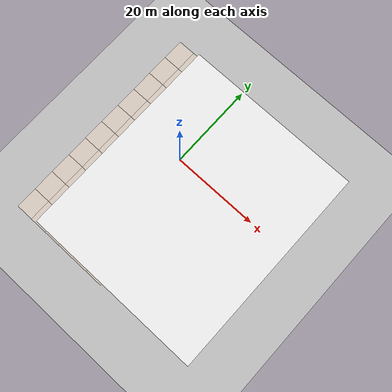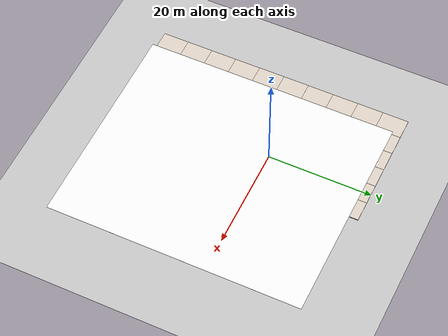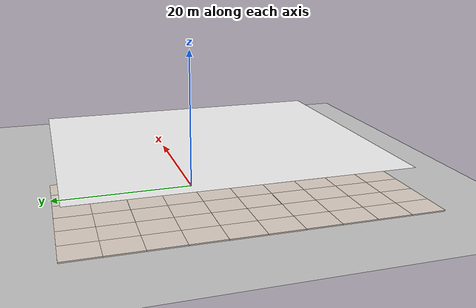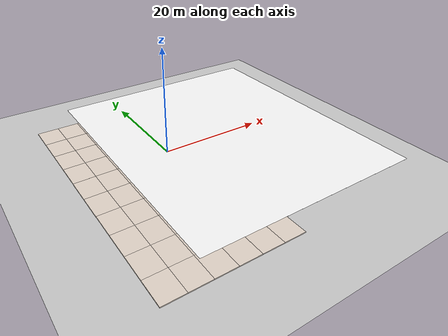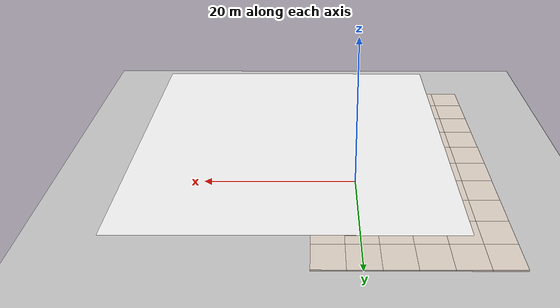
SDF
<sdf version="1.10">
 <world name="agri_world">
  <model name="ground_plane">
   <static>true</static>
   <link name="link">
    <collision name="collision">
     <geometry><plane><normal>0 0 1</normal><size>100 100</size></plane></geometry>
     <surface><friction><ode><mu>100</mu><mu2>50</mu2></ode></friction></surface>
    </collision>
    <visual name="visual">
     <cast_shadows>false</cast_shadows>
     <geometry><plane><normal>0 0 1</normal><size>100 100</size></plane></geometry>
     <material>
      <script><uri>file://media/materials/scripts/gazebo.material</uri><name>Gazebo/Grey</name></script>
     </material>
    </visual>
    <inertial>
     <mass>1</mass>
     <inertia><ixx>1</ixx><ixy>0</ixy><ixz>0</ixz><iyy>1</iyy><iyz>0</iyz><izz>1</izz></inertia>
    </inertial>
   </link>
  </model>
  <model name="mud_box">
   <static>true</static>
   <link name="link">
    <collision name="collision"><geometry><box><size>8 10 0.20000000000000001</size></box></geometry></collision>
    <visual name="visual_1">
     <pose>-2 2.5 0 0 0 0</pose>
     <cast_shadows>false</cast_shadows>
     <geometry><box><size>4 5 0.20000000000000001</size></box></geometry>
     <material>
      <ambient>0.899999976 0.850000024 0.800000012 1</ambient>
      <diffuse>0.899999976 0.850000024 0.800000012 1</diffuse>
      <specular>0.100000001 0.100000001 0.100000001 1</specular>
      <emissive>0 0 0 1</emissive>
      <pbr><metal><albedo_map>file://mud_box/materials/textures/mud_soft_leaves.png</albedo_map></metal></pbr>
     </material>
    </visual>
    <visual name="visual_2">
     <pose>2 2.5 0 0 0 0</pose>
     <cast_shadows>false</cast_shadows>
     <geometry><box><size>4 5 0.20000000000000001</size></box></geometry>
     <material>
      <ambient>0.899999976 0.850000024 0.800000012 1</ambient>
      <diffuse>0.899999976 0.850000024 0.800000012 1</diffuse>
      <specular>0.100000001 0.100000001 0.100000001 1</specular>
      <emissive>0 0 0 1</emissive>
      <pbr><metal><albedo_map>file://mud_box/materials/textures/mud_soft_leaves.png</albedo_map></metal></pbr>
     </material>
    </visual>
    <visual name="visual_3">
     <pose>2 -2.5 0 0 0 0</pose>
     <cast_shadows>false</cast_shadows>
     <geometry><box><size>4 5 0.20000000000000001</size></box></geometry>
     <material>
      <ambient>0.899999976 0.850000024 0.800000012 1</ambient>
      <diffuse>0.899999976 0.850000024 0.800000012 1</diffuse>
      <specular>0.100000001 0.100000001 0.100000001 1</specular>
      <emissive>0 0 0 1</emissive>
      <pbr><metal><albedo_map>file://mud_box/materials/textures/mud_soft_leaves.png</albedo_map></metal></pbr>
     </material>
    </visual>
    <visual name="visual_4">
     <pose>-2 -2.5 0 0 0 0</pose>
     <cast_shadows>false</cast_shadows>
     <geometry><box><size>4 5 0.20000000000000001</size></box></geometry>
     <material>
      <ambient>0.899999976 0.850000024 0.800000012 1</ambient>
      <diffuse>0.899999976 0.850000024 0.800000012 1</diffuse>
      <specular>0.100000001 0.100000001 0.100000001 1</specular>
      <emissive>0 0 0 1</emissive>
      <pbr><metal><albedo_map>file://mud_box/materials/textures/mud_soft_leaves.png</albedo_map></metal></pbr>
     </material>
    </visual>
    <inertial>
     <mass>1</mass>
     <inertia><ixx>1</ixx><ixy>0</ixy><ixz>0</ixz><iyy>1</iyy><iyz>0</iyz><izz>1</izz></inertia>
    </inertial>
   </link>
   <pose>-6.12765 4.83622 0 0 0 0</pose>
  </model>
  <model name="mud_box_0">
   <static>true</static>
   <link name="link">
    <collision name="collision"><geometry><box><size>8 10 0.20000000000000001</size></box></geometry></collision>
    <visual name="visual_1">
     <pose>-2 2.5 0 0 0 0</pose>
     <cast_shadows>false</cast_shadows>
     <geometry><box><size>4 5 0.20000000000000001</size></box></geometry>
     <material>
      <ambient>0.899999976 0.850000024 0.800000012 1</ambient>
      <diffuse>0.899999976 0.850000024 0.800000012 1</diffuse>
      <specular>0.100000001 0.100000001 0.100000001 1</specular>
      <emissive>0 0 0 1</emissive>
      <pbr><metal><albedo_map>file://mud_box/materials/textures/mud_soft_leaves.png</albedo_map></metal></pbr>
     </material>
    </visual>
    <visual name="visual_2">
     <pose>2 2.5 0 0 0 0</pose>
     <cast_shadows>false</cast_shadows>
     <geometry><box><size>4 5 0.20000000000000001</size></box></geometry>
     <material>
      <ambient>0.899999976 0.850000024 0.800000012 1</ambient>
      <diffuse>0.899999976 0.850000024 0.800000012 1</diffuse>
      <specular>0.100000001 0.100000001 0.100000001 1</specular>
      <emissive>0 0 0 1</emissive>
      <pbr><metal><albedo_map>file://mud_box/materials/textures/mud_soft_leaves.png</albedo_map></metal></pbr>
     </material>
    </visual>
    <visual name="visual_3">
     <pose>2 -2.5 0 0 0 0</pose>
     <cast_shadows>false</cast_shadows>
     <geometry><box><size>4 5 0.20000000000000001</size></box></geometry>
     <material>
      <ambient>0.899999976 0.850000024 0.800000012 1</ambient>
      <diffuse>0.899999976 0.850000024 0.800000012 1</diffuse>
      <specular>0.100000001 0.100000001 0.100000001 1</specular>
      <emissive>0 0 0 1</emissive>
      <pbr><metal><albedo_map>file://mud_box/materials/textures/mud_soft_leaves.png</albedo_map></metal></pbr>
     </material>
    </visual>
    <visual name="visual_4">
     <pose>-2 -2.5 0 0 0 0</pose>
     <cast_shadows>false</cast_shadows>
     <geometry><box><size>4 5 0.20000000000000001</size></box></geometry>
     <material>
      <ambient>0.899999976 0.850000024 0.800000012 1</ambient>
      <diffuse>0.899999976 0.850000024 0.800000012 1</diffuse>
      <specular>0.100000001 0.100000001 0.100000001 1</specular>
      <emissive>0 0 0 1</emissive>
      <pbr><metal><albedo_map>file://mud_box/materials/textures/mud_soft_leaves.png</albedo_map></metal></pbr>
     </material>
    </visual>
    <inertial>
     <mass>1</mass>
     <inertia><ixx>1</ixx><ixy>0</ixy><ixz>0</ixz><iyy>1</iyy><iyz>0</iyz><izz>1</izz></inertia>
    </inertial>
   </link>
   <pose>1.8676699999999999 4.8310399999999998 0 0 0 0</pose>
  </model>
  <model name="mud_box_1">
   <static>true</static>
   <link name="link">
    <collision name="collision"><geometry><box><size>8 10 0.20000000000000001</size></box></geometry></collision>
    <visual name="visual_1">
     <pose>-2 2.5 0 0 0 0</pose>
     <cast_shadows>false</cast_shadows>
     <geometry><box><size>4 5 0.20000000000000001</size></box></geometry>
     <material>
      <ambient>0.899999976 0.850000024 0.800000012 1</ambient>
      <diffuse>0.899999976 0.850000024 0.800000012 1</diffuse>
      <specular>0.100000001 0.100000001 0.100000001 1</specular>
      <emissive>0 0 0 1</emissive>
      <pbr><metal><albedo_map>file://mud_box/materials/textures/mud_soft_leaves.png</albedo_map></metal></pbr>
     </material>
    </visual>
    <visual name="visual_2">
     <pose>2 2.5 0 0 0 0</pose>
     <cast_shadows>false</cast_shadows>
     <geometry><box><size>4 5 0.20000000000000001</size></box></geometry>
     <material>
      <ambient>0.899999976 0.850000024 0.800000012 1</ambient>
      <diffuse>0.899999976 0.850000024 0.800000012 1</diffuse>
      <specular>0.100000001 0.100000001 0.100000001 1</specular>
      <emissive>0 0 0 1</emissive>
      <pbr><metal><albedo_map>file://mud_box/materials/textures/mud_soft_leaves.png</albedo_map></metal></pbr>
     </material>
    </visual>
    <visual name="visual_3">
     <pose>2 -2.5 0 0 0 0</pose>
     <cast_shadows>false</cast_shadows>
     <geometry><box><size>4 5 0.20000000000000001</size></box></geometry>
     <material>
      <ambient>0.899999976 0.850000024 0.800000012 1</ambient>
      <diffuse>0.899999976 0.850000024 0.800000012 1</diffuse>
      <specular>0.100000001 0.100000001 0.100000001 1</specular>
      <emissive>0 0 0 1</emissive>
      <pbr><metal><albedo_map>file://mud_box/materials/textures/mud_soft_leaves.png</albedo_map></metal></pbr>
     </material>
    </visual>
    <visual name="visual_4">
     <pose>-2 -2.5 0 0 0 0</pose>
     <cast_shadows>false</cast_shadows>
     <geometry><box><size>4 5 0.20000000000000001</size></box></geometry>
     <material>
      <ambient>0.899999976 0.850000024 0.800000012 1</ambient>
      <diffuse>0.899999976 0.850000024 0.800000012 1</diffuse>
      <specular>0.100000001 0.100000001 0.100000001 1</specular>
      <emissive>0 0 0 1</emissive>
      <pbr><metal><albedo_map>file://mud_box/materials/textures/mud_soft_leaves.png</albedo_map></metal></pbr>
     </material>
    </visual>
    <inertial>
     <mass>1</mass>
     <inertia><ixx>1</ixx><ixy>0</ixy><ixz>0</ixz><iyy>1</iyy><iyz>0</iyz><izz>1</izz></inertia>
    </inertial>
   </link>
   <pose>-6.1279199999999996 -5.1399800000000004 0 0 0 0</pose>
  </model>
  <model name="mud_box_2">
   <static>true</static>
   <link name="link">
    <collision name="collision"><geometry><box><size>8 10 0.20000000000000001</size></box></geometry></collision>
    <visual name="visual_1">
     <pose>-2 2.5 0 0 0 0</pose>
     <cast_shadows>false</cast_shadows>
     <geometry><box><size>4 5 0.20000000000000001</size></box></geometry>
     <material>
      <ambient>0.899999976 0.850000024 0.800000012 1</ambient>
      <diffuse>0.899999976 0.850000024 0.800000012 1</diffuse>
      <specular>0.100000001 0.100000001 0.100000001 1</specular>
      <emissive>0 0 0 1</emissive>
      <pbr><metal><albedo_map>file://mud_box/materials/textures/mud_soft_leaves.png</albedo_map></metal></pbr>
     </material>
    </visual>
    <visual name="visual_2">
     <pose>2 2.5 0 0 0 0</pose>
     <cast_shadows>false</cast_shadows>
     <geometry><box><size>4 5 0.20000000000000001</size></box></geometry>
     <material>
      <ambient>0.899999976 0.850000024 0.800000012 1</ambient>
      <diffuse>0.899999976 0.850000024 0.800000012 1</diffuse>
      <specular>0.100000001 0.100000001 0.100000001 1</specular>
      <emissive>0 0 0 1</emissive>
      <pbr><metal><albedo_map>file://mud_box/materials/textures/mud_soft_leaves.png</albedo_map></metal></pbr>
     </material>
    </visual>
    <visual name="visual_3">
     <pose>2 -2.5 0 0 0 0</pose>
     <cast_shadows>false</cast_shadows>
     <geometry><box><size>4 5 0.20000000000000001</size></box></geometry>
     <material>
      <ambient>0.899999976 0.850000024 0.800000012 1</ambient>
      <diffuse>0.899999976 0.850000024 0.800000012 1</diffuse>
      <specular>0.100000001 0.100000001 0.100000001 1</specular>
      <emissive>0 0 0 1</emissive>
      <pbr><metal><albedo_map>file://mud_box/materials/textures/mud_soft_leaves.png</albedo_map></metal></pbr>
     </material>
    </visual>
    <visual name="visual_4">
     <pose>-2 -2.5 0 0 0 0</pose>
     <cast_shadows>false</cast_shadows>
     <geometry><box><size>4 5 0.20000000000000001</size></box></geometry>
     <material>
      <ambient>0.899999976 0.850000024 0.800000012 1</ambient>
      <diffuse>0.899999976 0.850000024 0.800000012 1</diffuse>
      <specular>0.100000001 0.100000001 0.100000001 1</specular>
      <emissive>0 0 0 1</emissive>
      <pbr><metal><albedo_map>file://mud_box/materials/textures/mud_soft_leaves.png</albedo_map></metal></pbr>
     </material>
    </visual>
    <inertial>
     <mass>1</mass>
     <inertia><ixx>1</ixx><ixy>0</ixy><ixz>0</ixz><iyy>1</iyy><iyz>0</iyz><izz>1</izz></inertia>
    </inertial>
   </link>
   <pose>1.85975 -5.1519199999999998 0 0 0 0</pose>
  </model>
  <model name="mud_box_0_clone_clone_1">
   <static>true</static>
   <link name="link">
    <collision name="collision"><geometry><box><size>8 10 0.20000000000000001</size></box></geometry></collision>
    <visual name="visual_1">
     <pose>-2 2.5 0 0 0 0</pose>
     <cast_shadows>false</cast_shadows>
     <geometry><box><size>4 5 0.20000000000000001</size></box></geometry>
     <material>
      <ambient>0.899999976 0.850000024 0.800000012 1</ambient>
      <diffuse>0.899999976 0.850000024 0.800000012 1</diffuse>
      <specular>0.100000001 0.100000001 0.100000001 1</specular>
      <emissive>0 0 0 1</emissive>
      <pbr><metal><albedo_map>file://mud_box/materials/textures/mud_soft_leaves.png</albedo_map></metal></pbr>
     </material>
    </visual>
    <visual name="visual_2">
     <pose>2 2.5 0 0 0 0</pose>
     <cast_shadows>false</cast_shadows>
     <geometry><box><size>4 5 0.20000000000000001</size></box></geometry>
     <material>
      <ambient>0.899999976 0.850000024 0.800000012 1</ambient>
      <diffuse>0.899999976 0.850000024 0.800000012 1</diffuse>
      <specular>0.100000001 0.100000001 0.100000001 1</specular>
      <emissive>0 0 0 1</emissive>
      <pbr><metal><albedo_map>file://mud_box/materials/textures/mud_soft_leaves.png</albedo_map></metal></pbr>
     </material>
    </visual>
    <visual name="visual_3">
     <pose>2 -2.5 0 0 0 0</pose>
     <cast_shadows>false</cast_shadows>
     <geometry><box><size>4 5 0.20000000000000001</size></box></geometry>
     <material>
      <ambient>0.899999976 0.850000024 0.800000012 1</ambient>
      <diffuse>0.899999976 0.850000024 0.800000012 1</diffuse>
      <specular>0.100000001 0.100000001 0.100000001 1</specular>
      <emissive>0 0 0 1</emissive>
      <pbr><metal><albedo_map>file://mud_box/materials/textures/mud_soft_leaves.png</albedo_map></metal></pbr>
     </material>
    </visual>
    <visual name="visual_4">
     <pose>-2 -2.5 0 0 0 0</pose>
     <cast_shadows>false</cast_shadows>
     <geometry><box><size>4 5 0.20000000000000001</size></box></geometry>
     <material>
      <ambient>0.899999976 0.850000024 0.800000012 1</ambient>
      <diffuse>0.899999976 0.850000024 0.800000012 1</diffuse>
      <specular>0.100000001 0.100000001 0.100000001 1</specular>
      <emissive>0 0 0 1</emissive>
      <pbr><metal><albedo_map>file://mud_box/materials/textures/mud_soft_leaves.png</albedo_map></metal></pbr>
     </material>
    </visual>
    <inertial>
     <mass>1</mass>
     <inertia><ixx>1</ixx><ixy>0</ixy><ixz>0</ixz><iyy>1</iyy><iyz>0</iyz><izz>1</izz></inertia>
    </inertial>
   </link>
   <pose>-14.127599999999999 -5.1520900000000003 0 0 0 0</pose>
  </model>
  <model name="mud_box_4">
   <static>true</static>
   <link name="link">
    <collision name="collision"><geometry><box><size>8 10 0.20000000000000001</size></box></geometry></collision>
    <visual name="visual_1">
     <pose>-2 2.5 0 0 0 0</pose>
     <cast_shadows>false</cast_shadows>
     <geometry><box><size>4 5 0.20000000000000001</size></box></geometry>
     <material>
      <ambient>0.899999976 0.850000024 0.800000012 1</ambient>
      <diffuse>0.899999976 0.850000024 0.800000012 1</diffuse>
      <specular>0.100000001 0.100000001 0.100000001 1</specular>
      <emissive>0 0 0 1</emissive>
      <pbr><metal><albedo_map>file://mud_box/materials/textures/mud_soft_leaves.png</albedo_map></metal></pbr>
     </material>
    </visual>
    <visual name="visual_2">
     <pose>2 2.5 0 0 0 0</pose>
     <cast_shadows>false</cast_shadows>
     <geometry><box><size>4 5 0.20000000000000001</size></box></geometry>
     <material>
      <ambient>0.899999976 0.850000024 0.800000012 1</ambient>
      <diffuse>0.899999976 0.850000024 0.800000012 1</diffuse>
      <specular>0.100000001 0.100000001 0.100000001 1</specular>
      <emissive>0 0 0 1</emissive>
      <pbr><metal><albedo_map>file://mud_box/materials/textures/mud_soft_leaves.png</albedo_map></metal></pbr>
     </material>
    </visual>
    <visual name="visual_3">
     <pose>2 -2.5 0 0 0 0</pose>
     <cast_shadows>false</cast_shadows>
     <geometry><box><size>4 5 0.20000000000000001</size></box></geometry>
     <material>
      <ambient>0.899999976 0.850000024 0.800000012 1</ambient>
      <diffuse>0.899999976 0.850000024 0.800000012 1</diffuse>
      <specular>0.100000001 0.100000001 0.100000001 1</specular>
      <emissive>0 0 0 1</emissive>
      <pbr><metal><albedo_map>file://mud_box/materials/textures/mud_soft_leaves.png</albedo_map></metal></pbr>
     </material>
    </visual>
    <visual name="visual_4">
     <pose>-2 -2.5 0 0 0 0</pose>
     <cast_shadows>false</cast_shadows>
     <geometry><box><size>4 5 0.20000000000000001</size></box></geometry>
     <material>
      <ambient>0.899999976 0.850000024 0.800000012 1</ambient>
      <diffuse>0.899999976 0.850000024 0.800000012 1</diffuse>
      <specular>0.100000001 0.100000001 0.100000001 1</specular>
      <emissive>0 0 0 1</emissive>
      <pbr><metal><albedo_map>file://mud_box/materials/textures/mud_soft_leaves.png</albedo_map></metal></pbr>
     </material>
    </visual>
    <inertial>
     <mass>1</mass>
     <inertia><ixx>1</ixx><ixy>0</ixy><ixz>0</ixz><iyy>1</iyy><iyz>0</iyz><izz>1</izz></inertia>
    </inertial>
   </link>
   <pose>-14.1 14.85 0 0 0 0</pose>
  </model>
  <model name="mud_box_5">
   <static>true</static>
   <link name="link">
    <collision name="collision"><geometry><box><size>8 10 0.20000000000000001</size></box></geometry></collision>
    <visual name="visual_1">
     <pose>-2 2.5 0 0 0 0</pose>
     <cast_shadows>false</cast_shadows>
     <geometry><box><size>4 5 0.20000000000000001</size></box></geometry>
     <material>
      <ambient>0.899999976 0.850000024 0.800000012 1</ambient>
      <diffuse>0.899999976 0.850000024 0.800000012 1</diffuse>
      <specular>0.100000001 0.100000001 0.100000001 1</specular>
      <emissive>0 0 0 1</emissive>
      <pbr><metal><albedo_map>file://mud_box/materials/textures/mud_soft_leaves.png</albedo_map></metal></pbr>
     </material>
    </visual>
    <visual name="visual_2">
     <pose>2 2.5 0 0 0 0</pose>
     <cast_shadows>false</cast_shadows>
     <geometry><box><size>4 5 0.20000000000000001</size></box></geometry>
     <material>
      <ambient>0.899999976 0.850000024 0.800000012 1</ambient>
      <diffuse>0.899999976 0.850000024 0.800000012 1</diffuse>
      <specular>0.100000001 0.100000001 0.100000001 1</specular>
      <emissive>0 0 0 1</emissive>
      <pbr><metal><albedo_map>file://mud_box/materials/textures/mud_soft_leaves.png</albedo_map></metal></pbr>
     </material>
    </visual>
    <visual name="visual_3">
     <pose>2 -2.5 0 0 0 0</pose>
     <cast_shadows>false</cast_shadows>
     <geometry><box><size>4 5 0.20000000000000001</size></box></geometry>
     <material>
      <ambient>0.899999976 0.850000024 0.800000012 1</ambient>
      <diffuse>0.899999976 0.850000024 0.800000012 1</diffuse>
      <specular>0.100000001 0.100000001 0.100000001 1</specular>
      <emissive>0 0 0 1</emissive>
      <pbr><metal><albedo_map>file://mud_box/materials/textures/mud_soft_leaves.png</albedo_map></metal></pbr>
     </material>
    </visual>
    <visual name="visual_4">
     <pose>-2 -2.5 0 0 0 0</pose>
     <cast_shadows>false</cast_shadows>
     <geometry><box><size>4 5 0.20000000000000001</size></box></geometry>
     <material>
      <ambient>0.899999976 0.850000024 0.800000012 1</ambient>
      <diffuse>0.899999976 0.850000024 0.800000012 1</diffuse>
      <specular>0.100000001 0.100000001 0.100000001 1</specular>
      <emissive>0 0 0 1</emissive>
      <pbr><metal><albedo_map>file://mud_box/materials/textures/mud_soft_leaves.png</albedo_map></metal></pbr>
     </material>
    </visual>
    <inertial>
     <mass>1</mass>
     <inertia><ixx>1</ixx><ixy>0</ixy><ixz>0</ixz><iyy>1</iyy><iyz>0</iyz><izz>1</izz></inertia>
    </inertial>
   </link>
   <pose>-6.0999999999999996 14.85 0 0 0 0</pose>
  </model>
  <model name="mud_box_8">
   <static>true</static>
   <link name="link">
    <collision name="collision"><geometry><box><size>8 10 0.20000000000000001</size></box></geometry></collision>
    <visual name="visual_1">
     <pose>-2 2.5 0 0 0 0</pose>
     <cast_shadows>false</cast_shadows>
     <geometry><box><size>4 5 0.20000000000000001</size></box></geometry>
     <material>
      <ambient>0.899999976 0.850000024 0.800000012 1</ambient>
      <diffuse>0.899999976 0.850000024 0.800000012 1</diffuse>
      <specular>0.100000001 0.100000001 0.100000001 1</specular>
      <emissive>0 0 0 1</emissive>
      <pbr><metal><albedo_map>file://mud_box/materials/textures/mud_soft_leaves.png</albedo_map></metal></pbr>
     </material>
    </visual>
    <visual name="visual_2">
     <pose>2 2.5 0 0 0 0</pose>
     <cast_shadows>false</cast_shadows>
     <geometry><box><size>4 5 0.20000000000000001</size></box></geometry>
     <material>
      <ambient>0.899999976 0.850000024 0.800000012 1</ambient>
      <diffuse>0.899999976 0.850000024 0.800000012 1</diffuse>
      <specular>0.100000001 0.100000001 0.100000001 1</specular>
      <emissive>0 0 0 1</emissive>
      <pbr><metal><albedo_map>file://mud_box/materials/textures/mud_soft_leaves.png</albedo_map></metal></pbr>
     </material>
    </visual>
    <visual name="visual_3">
     <pose>2 -2.5 0 0 0 0</pose>
     <cast_shadows>false</cast_shadows>
     <geometry><box><size>4 5 0.20000000000000001</size></box></geometry>
     <material>
      <ambient>0.899999976 0.850000024 0.800000012 1</ambient>
      <diffuse>0.899999976 0.850000024 0.800000012 1</diffuse>
      <specular>0.100000001 0.100000001 0.100000001 1</specular>
      <emissive>0 0 0 1</emissive>
      <pbr><metal><albedo_map>file://mud_box/materials/textures/mud_soft_leaves.png</albedo_map></metal></pbr>
     </material>
    </visual>
    <visual name="visual_4">
     <pose>-2 -2.5 0 0 0 0</pose>
     <cast_shadows>false</cast_shadows>
     <geometry><box><size>4 5 0.20000000000000001</size></box></geometry>
     <material>
      <ambient>0.899999976 0.850000024 0.800000012 1</ambient>
      <diffuse>0.899999976 0.850000024 0.800000012 1</diffuse>
      <specular>0.100000001 0.100000001 0.100000001 1</specular>
      <emissive>0 0 0 1</emissive>
      <pbr><metal><albedo_map>file://mud_box/materials/textures/mud_soft_leaves.png</albedo_map></metal></pbr>
     </material>
    </visual>
    <inertial>
     <mass>1</mass>
     <inertia><ixx>1</ixx><ixy>0</ixy><ixz>0</ixz><iyy>1</iyy><iyz>0</iyz><izz>1</izz></inertia>
    </inertial>
   </link>
   <pose>1.8999999999999999 14.85 0 0 0 0</pose>
  </model>
  <model name="mud_box_0_clone_clone_1_1">
   <static>true</static>
   <link name="link">
    <collision name="collision"><geometry><box><size>8 10 0.20000000000000001</size></box></geometry></collision>
    <visual name="visual_1">
     <pose>-2 2.5 0 0 0 0</pose>
     <cast_shadows>false</cast_shadows>
     <geometry><box><size>4 5 0.20000000000000001</size></box></geometry>
     <material>
      <ambient>0.899999976 0.850000024 0.800000012 1</ambient>
      <diffuse>0.899999976 0.850000024 0.800000012 1</diffuse>
      <specular>0.100000001 0.100000001 0.100000001 1</specular>
      <emissive>0 0 0 1</emissive>
      <pbr><metal><albedo_map>file://mud_box/materials/textures/mud_soft_leaves.png</albedo_map></metal></pbr>
     </material>
    </visual>
    <visual name="visual_2">
     <pose>2 2.5 0 0 0 0</pose>
     <cast_shadows>false</cast_shadows>
     <geometry><box><size>4 5 0.20000000000000001</size></box></geometry>
     <material>
      <ambient>0.899999976 0.850000024 0.800000012 1</ambient>
      <diffuse>0.899999976 0.850000024 0.800000012 1</diffuse>
      <specular>0.100000001 0.100000001 0.100000001 1</specular>
      <emissive>0 0 0 1</emissive>
      <pbr><metal><albedo_map>file://mud_box/materials/textures/mud_soft_leaves.png</albedo_map></metal></pbr>
     </material>
    </visual>
    <visual name="visual_3">
     <pose>2 -2.5 0 0 0 0</pose>
     <cast_shadows>false</cast_shadows>
     <geometry><box><size>4 5 0.20000000000000001</size></box></geometry>
     <material>
      <ambient>0.899999976 0.850000024 0.800000012 1</ambient>
      <diffuse>0.899999976 0.850000024 0.800000012 1</diffuse>
      <specular>0.100000001 0.100000001 0.100000001 1</specular>
      <emissive>0 0 0 1</emissive>
      <pbr><metal><albedo_map>file://mud_box/materials/textures/mud_soft_leaves.png</albedo_map></metal></pbr>
     </material>
    </visual>
    <visual name="visual_4">
     <pose>-2 -2.5 0 0 0 0</pose>
     <cast_shadows>false</cast_shadows>
     <geometry><box><size>4 5 0.20000000000000001</size></box></geometry>
     <material>
      <ambient>0.899999976 0.850000024 0.800000012 1</ambient>
      <diffuse>0.899999976 0.850000024 0.800000012 1</diffuse>
      <specular>0.100000001 0.100000001 0.100000001 1</specular>
      <emissive>0 0 0 1</emissive>
      <pbr><metal><albedo_map>file://mud_box/materials/textures/mud_soft_leaves.png</albedo_map></metal></pbr>
     </material>
    </visual>
    <inertial>
     <mass>1</mass>
     <inertia><ixx>1</ixx><ixy>0</ixy><ixz>0</ixz><iyy>1</iyy><iyz>0</iyz><izz>1</izz></inertia>
    </inertial>
   </link>
   <pose>-14.1 -15.15 0 0 0 0</pose>
  </model>
  <model name="mud_box_0_clone_clone_1_2">
   <static>true</static>
   <link name="link">
    <collision name="collision"><geometry><box><size>8 10 0.20000000000000001</size></box></geometry></collision>
    <visual name="visual_1">
     <pose>-2 2.5 0 0 0 0</pose>
     <cast_shadows>false</cast_shadows>
     <geometry><box><size>4 5 0.20000000000000001</size></box></geometry>
     <material>
      <ambient>0.899999976 0.850000024 0.800000012 1</ambient>
      <diffuse>0.899999976 0.850000024 0.800000012 1</diffuse>
      <specular>0.100000001 0.100000001 0.100000001 1</specular>
      <emissive>0 0 0 1</emissive>
      <pbr><metal><albedo_map>file://mud_box/materials/textures/mud_soft_leaves.png</albedo_map></metal></pbr>
     </material>
    </visual>
    <visual name="visual_2">
     <pose>2 2.5 0 0 0 0</pose>
     <cast_shadows>false</cast_shadows>
     <geometry><box><size>4 5 0.20000000000000001</size></box></geometry>
     <material>
      <ambient>0.899999976 0.850000024 0.800000012 1</ambient>
      <diffuse>0.899999976 0.850000024 0.800000012 1</diffuse>
      <specular>0.100000001 0.100000001 0.100000001 1</specular>
      <emissive>0 0 0 1</emissive>
      <pbr><metal><albedo_map>file://mud_box/materials/textures/mud_soft_leaves.png</albedo_map></metal></pbr>
     </material>
    </visual>
    <visual name="visual_3">
     <pose>2 -2.5 0 0 0 0</pose>
     <cast_shadows>false</cast_shadows>
     <geometry><box><size>4 5 0.20000000000000001</size></box></geometry>
     <material>
      <ambient>0.899999976 0.850000024 0.800000012 1</ambient>
      <diffuse>0.899999976 0.850000024 0.800000012 1</diffuse>
      <specular>0.100000001 0.100000001 0.100000001 1</specular>
      <emissive>0 0 0 1</emissive>
      <pbr><metal><albedo_map>file://mud_box/materials/textures/mud_soft_leaves.png</albedo_map></metal></pbr>
     </material>
    </visual>
    <visual name="visual_4">
     <pose>-2 -2.5 0 0 0 0</pose>
     <cast_shadows>false</cast_shadows>
     <geometry><box><size>4 5 0.20000000000000001</size></box></geometry>
     <material>
      <ambient>0.899999976 0.850000024 0.800000012 1</ambient>
      <diffuse>0.899999976 0.850000024 0.800000012 1</diffuse>
      <specular>0.100000001 0.100000001 0.100000001 1</specular>
      <emissive>0 0 0 1</emissive>
      <pbr><metal><albedo_map>file://mud_box/materials/textures/mud_soft_leaves.png</albedo_map></metal></pbr>
     </material>
    </visual>
    <inertial>
     <mass>1</mass>
     <inertia><ixx>1</ixx><ixy>0</ixy><ixz>0</ixz><iyy>1</iyy><iyz>0</iyz><izz>1</izz></inertia>
    </inertial>
   </link>
   <pose>-6.0999999999999996 -15.15 0 0 0 0</pose>
  </model>
  <model name="mud_box_0_clone_clone_1_3">
   <static>true</static>
   <link name="link">
    <collision name="collision"><geometry><box><size>8 10 0.20000000000000001</size></box></geometry></collision>
    <visual name="visual_1">
     <pose>-2 2.5 0 0 0 0</pose>
     <cast_shadows>false</cast_shadows>
     <geometry><box><size>4 5 0.20000000000000001</size></box></geometry>
     <material>
      <ambient>0.899999976 0.850000024 0.800000012 1</ambient>
      <diffuse>0.899999976 0.850000024 0.800000012 1</diffuse>
      <specular>0.100000001 0.100000001 0.100000001 1</specular>
      <emissive>0 0 0 1</emissive>
      <pbr><metal><albedo_map>file://mud_box/materials/textures/mud_soft_leaves.png</albedo_map></metal></pbr>
     </material>
    </visual>
    <visual name="visual_2">
     <pose>2 2.5 0 0 0 0</pose>
     <cast_shadows>false</cast_shadows>
     <geometry><box><size>4 5 0.20000000000000001</size></box></geometry>
     <material>
      <ambient>0.899999976 0.850000024 0.800000012 1</ambient>
      <diffuse>0.899999976 0.850000024 0.800000012 1</diffuse>
      <specular>0.100000001 0.100000001 0.100000001 1</specular>
      <emissive>0 0 0 1</emissive>
      <pbr><metal><albedo_map>file://mud_box/materials/textures/mud_soft_leaves.png</albedo_map></metal></pbr>
     </material>
    </visual>
    <visual name="visual_3">
     <pose>2 -2.5 0 0 0 0</pose>
     <cast_shadows>false</cast_shadows>
     <geometry><box><size>4 5 0.20000000000000001</size></box></geometry>
     <material>
      <ambient>0.899999976 0.850000024 0.800000012 1</ambient>
      <diffuse>0.899999976 0.850000024 0.800000012 1</diffuse>
      <specular>0.100000001 0.100000001 0.100000001 1</specular>
      <emissive>0 0 0 1</emissive>
      <pbr><metal><albedo_map>file://mud_box/materials/textures/mud_soft_leaves.png</albedo_map></metal></pbr>
     </material>
    </visual>
    <visual name="visual_4">
     <pose>-2 -2.5 0 0 0 0</pose>
     <cast_shadows>false</cast_shadows>
     <geometry><box><size>4 5 0.20000000000000001</size></box></geometry>
     <material>
      <ambient>0.899999976 0.850000024 0.800000012 1</ambient>
      <diffuse>0.899999976 0.850000024 0.800000012 1</diffuse>
      <specular>0.100000001 0.100000001 0.100000001 1</specular>
      <emissive>0 0 0 1</emissive>
      <pbr><metal><albedo_map>file://mud_box/materials/textures/mud_soft_leaves.png</albedo_map></metal></pbr>
     </material>
    </visual>
    <inertial>
     <mass>1</mass>
     <inertia><ixx>1</ixx><ixy>0</ixy><ixz>0</ixz><iyy>1</iyy><iyz>0</iyz><izz>1</izz></inertia>
    </inertial>
   </link>
   <pose>1.8999999999999999 -15.15 0 0 0 0</pose>
  </model>
  <model name="mud_box_0_clone_clone_1_6">
   <static>true</static>
   <link name="link">
    <collision name="collision"><geometry><box><size>8 10 0.20000000000000001</size></box></geometry></collision>
    <visual name="visual_1">
     <pose>-2 2.5 0 0 0 0</pose>
     <cast_shadows>false</cast_shadows>
     <geometry><box><size>4 5 0.20000000000000001</size></box></geometry>
     <material>
      <ambient>0.899999976 0.850000024 0.800000012 1</ambient>
      <diffuse>0.899999976 0.850000024 0.800000012 1</diffuse>
      <specular>0.100000001 0.100000001 0.100000001 1</specular>
      <emissive>0 0 0 1</emissive>
      <pbr><metal><albedo_map>file://mud_box/materials/textures/mud_soft_leaves.png</albedo_map></metal></pbr>
     </material>
    </visual>
    <visual name="visual_2">
     <pose>2 2.5 0 0 0 0</pose>
     <cast_shadows>false</cast_shadows>
     <geometry><box><size>4 5 0.20000000000000001</size></box></geometry>
     <material>
      <ambient>0.899999976 0.850000024 0.800000012 1</ambient>
      <diffuse>0.899999976 0.850000024 0.800000012 1</diffuse>
      <specular>0.100000001 0.100000001 0.100000001 1</specular>
      <emissive>0 0 0 1</emissive>
      <pbr><metal><albedo_map>file://mud_box/materials/textures/mud_soft_leaves.png</albedo_map></metal></pbr>
     </material>
    </visual>
    <visual name="visual_3">
     <pose>2 -2.5 0 0 0 0</pose>
     <cast_shadows>false</cast_shadows>
     <geometry><box><size>4 5 0.20000000000000001</size></box></geometry>
     <material>
      <ambient>0.899999976 0.850000024 0.800000012 1</ambient>
      <diffuse>0.899999976 0.850000024 0.800000012 1</diffuse>
      <specular>0.100000001 0.100000001 0.100000001 1</specular>
      <emissive>0 0 0 1</emissive>
      <pbr><metal><albedo_map>file://mud_box/materials/textures/mud_soft_leaves.png</albedo_map></metal></pbr>
     </material>
    </visual>
    <visual name="visual_4">
     <pose>-2 -2.5 0 0 0 0</pose>
     <cast_shadows>false</cast_shadows>
     <geometry><box><size>4 5 0.20000000000000001</size></box></geometry>
     <material>
      <ambient>0.899999976 0.850000024 0.800000012 1</ambient>
      <diffuse>0.899999976 0.850000024 0.800000012 1</diffuse>
      <specular>0.100000001 0.100000001 0.100000001 1</specular>
      <emissive>0 0 0 1</emissive>
      <pbr><metal><albedo_map>file://mud_box/materials/textures/mud_soft_leaves.png</albedo_map></metal></pbr>
     </material>
    </visual>
    <inertial>
     <mass>1</mass>
     <inertia><ixx>1</ixx><ixy>0</ixy><ixz>0</ixz><iyy>1</iyy><iyz>0</iyz><izz>1</izz></inertia>
    </inertial>
   </link>
   <pose>-14.1 -25.149999999999999 0 0 0 0</pose>
  </model>
  <model name="mud_box_0_clone_clone_1_7">
   <static>true</static>
   <link name="link">
    <collision name="collision"><geometry><box><size>8 10 0.20000000000000001</size></box></geometry></collision>
    <visual name="visual_1">
     <pose>-2 2.5 0 0 0 0</pose>
     <cast_shadows>false</cast_shadows>
     <geometry><box><size>4 5 0.20000000000000001</size></box></geometry>
     <material>
      <ambient>0.899999976 0.850000024 0.800000012 1</ambient>
      <diffuse>0.899999976 0.850000024 0.800000012 1</diffuse>
      <specular>0.100000001 0.100000001 0.100000001 1</specular>
      <emissive>0 0 0 1</emissive>
      <pbr><metal><albedo_map>file://mud_box/materials/textures/mud_soft_leaves.png</albedo_map></metal></pbr>
     </material>
    </visual>
    <visual name="visual_2">
     <pose>2 2.5 0 0 0 0</pose>
     <cast_shadows>false</cast_shadows>
     <geometry><box><size>4 5 0.20000000000000001</size></box></geometry>
     <material>
      <ambient>0.899999976 0.850000024 0.800000012 1</ambient>
      <diffuse>0.899999976 0.850000024 0.800000012 1</diffuse>
      <specular>0.100000001 0.100000001 0.100000001 1</specular>
      <emissive>0 0 0 1</emissive>
      <pbr><metal><albedo_map>file://mud_box/materials/textures/mud_soft_leaves.png</albedo_map></metal></pbr>
     </material>
    </visual>
    <visual name="visual_3">
     <pose>2 -2.5 0 0 0 0</pose>
     <cast_shadows>false</cast_shadows>
     <geometry><box><size>4 5 0.20000000000000001</size></box></geometry>
     <material>
      <ambient>0.899999976 0.850000024 0.800000012 1</ambient>
      <diffuse>0.899999976 0.850000024 0.800000012 1</diffuse>
      <specular>0.100000001 0.100000001 0.100000001 1</specular>
      <emissive>0 0 0 1</emissive>
      <pbr><metal><albedo_map>file://mud_box/materials/textures/mud_soft_leaves.png</albedo_map></metal></pbr>
     </material>
    </visual>
    <visual name="visual_4">
     <pose>-2 -2.5 0 0 0 0</pose>
     <cast_shadows>false</cast_shadows>
     <geometry><box><size>4 5 0.20000000000000001</size></box></geometry>
     <material>
      <ambient>0.899999976 0.850000024 0.800000012 1</ambient>
      <diffuse>0.899999976 0.850000024 0.800000012 1</diffuse>
      <specular>0.100000001 0.100000001 0.100000001 1</specular>
      <emissive>0 0 0 1</emissive>
      <pbr><metal><albedo_map>file://mud_box/materials/textures/mud_soft_leaves.png</albedo_map></metal></pbr>
     </material>
    </visual>
    <inertial>
     <mass>1</mass>
     <inertia><ixx>1</ixx><ixy>0</ixy><ixz>0</ixz><iyy>1</iyy><iyz>0</iyz><izz>1</izz></inertia>
    </inertial>
   </link>
   <pose>-6.0999999999999996 -25.149999999999999 0 0 0 0</pose>
  </model>
  <model name="mud_box_0_clone_clone_1_8">
   <static>true</static>
   <link name="link">
    <collision name="collision"><geometry><box><size>8 10 0.20000000000000001</size></box></geometry></collision>
    <visual name="visual_1">
     <pose>-2 2.5 0 0 0 0</pose>
     <cast_shadows>false</cast_shadows>
     <geometry><box><size>4 5 0.20000000000000001</size></box></geometry>
     <material>
      <ambient>0.899999976 0.850000024 0.800000012 1</ambient>
      <diffuse>0.899999976 0.850000024 0.800000012 1</diffuse>
      <specular>0.100000001 0.100000001 0.100000001 1</specular>
      <emissive>0 0 0 1</emissive>
      <pbr><metal><albedo_map>file://mud_box/materials/textures/mud_soft_leaves.png</albedo_map></metal></pbr>
     </material>
    </visual>
    <visual name="visual_2">
     <pose>2 2.5 0 0 0 0</pose>
     <cast_shadows>false</cast_shadows>
     <geometry><box><size>4 5 0.20000000000000001</size></box></geometry>
     <material>
      <ambient>0.899999976 0.850000024 0.800000012 1</ambient>
      <diffuse>0.899999976 0.850000024 0.800000012 1</diffuse>
      <specular>0.100000001 0.100000001 0.100000001 1</specular>
      <emissive>0 0 0 1</emissive>
      <pbr><metal><albedo_map>file://mud_box/materials/textures/mud_soft_leaves.png</albedo_map></metal></pbr>
     </material>
    </visual>
    <visual name="visual_3">
     <pose>2 -2.5 0 0 0 0</pose>
     <cast_shadows>false</cast_shadows>
     <geometry><box><size>4 5 0.20000000000000001</size></box></geometry>
     <material>
      <ambient>0.899999976 0.850000024 0.800000012 1</ambient>
      <diffuse>0.899999976 0.850000024 0.800000012 1</diffuse>
      <specular>0.100000001 0.100000001 0.100000001 1</specular>
      <emissive>0 0 0 1</emissive>
      <pbr><metal><albedo_map>file://mud_box/materials/textures/mud_soft_leaves.png</albedo_map></metal></pbr>
     </material>
    </visual>
    <visual name="visual_4">
     <pose>-2 -2.5 0 0 0 0</pose>
     <cast_shadows>false</cast_shadows>
     <geometry><box><size>4 5 0.20000000000000001</size></box></geometry>
     <material>
      <ambient>0.899999976 0.850000024 0.800000012 1</ambient>
      <diffuse>0.899999976 0.850000024 0.800000012 1</diffuse>
      <specular>0.100000001 0.100000001 0.100000001 1</specular>
      <emissive>0 0 0 1</emissive>
      <pbr><metal><albedo_map>file://mud_box/materials/textures/mud_soft_leaves.png</albedo_map></metal></pbr>
     </material>
    </visual>
    <inertial>
     <mass>1</mass>
     <inertia><ixx>1</ixx><ixy>0</ixy><ixz>0</ixz><iyy>1</iyy><iyz>0</iyz><izz>1</izz></inertia>
    </inertial>
   </link>
   <pose>1.9005203247070312 -25.149999618530273 0 0 0 0</pose>
  </model>
  <model name="mud_box_4_1">
   <static>true</static>
   <link name="link">
    <collision name="collision"><geometry><box><size>8 10 0.20000000000000001</size></box></geometry></collision>
    <visual name="visual_1">
     <pose>-2 2.5 0 0 0 0</pose>
     <cast_shadows>false</cast_shadows>
     <geometry><box><size>4 5 0.20000000000000001</size></box></geometry>
     <material>
      <ambient>0.899999976 0.850000024 0.800000012 1</ambient>
      <diffuse>0.899999976 0.850000024 0.800000012 1</diffuse>
      <specular>0.100000001 0.100000001 0.100000001 1</specular>
      <emissive>0 0 0 1</emissive>
      <pbr><metal><albedo_map>file://mud_box/materials/textures/mud_soft_leaves.png</albedo_map></metal></pbr>
     </material>
    </visual>
    <visual name="visual_2">
     <pose>2 2.5 0 0 0 0</pose>
     <cast_shadows>false</cast_shadows>
     <geometry><box><size>4 5 0.20000000000000001</size></box></geometry>
     <material>
      <ambient>0.899999976 0.850000024 0.800000012 1</ambient>
      <diffuse>0.899999976 0.850000024 0.800000012 1</diffuse>
      <specular>0.100000001 0.100000001 0.100000001 1</specular>
      <emissive>0 0 0 1</emissive>
      <pbr><metal><albedo_map>file://mud_box/materials/textures/mud_soft_leaves.png</albedo_map></metal></pbr>
     </material>
    </visual>
    <visual name="visual_3">
     <pose>2 -2.5 0 0 0 0</pose>
     <cast_shadows>false</cast_shadows>
     <geometry><box><size>4 5 0.20000000000000001</size></box></geometry>
     <material>
      <ambient>0.899999976 0.850000024 0.800000012 1</ambient>
      <diffuse>0.899999976 0.850000024 0.800000012 1</diffuse>
      <specular>0.100000001 0.100000001 0.100000001 1</specular>
      <emissive>0 0 0 1</emissive>
      <pbr><metal><albedo_map>file://mud_box/materials/textures/mud_soft_leaves.png</albedo_map></metal></pbr>
     </material>
    </visual>
    <visual name="visual_4">
     <pose>-2 -2.5 0 0 0 0</pose>
     <cast_shadows>false</cast_shadows>
     <geometry><box><size>4 5 0.20000000000000001</size></box></geometry>
     <material>
      <ambient>0.899999976 0.850000024 0.800000012 1</ambient>
      <diffuse>0.899999976 0.850000024 0.800000012 1</diffuse>
      <specular>0.100000001 0.100000001 0.100000001 1</specular>
      <emissive>0 0 0 1</emissive>
      <pbr><metal><albedo_map>file://mud_box/materials/textures/mud_soft_leaves.png</albedo_map></metal></pbr>
     </material>
    </visual>
    <inertial>
     <mass>1</mass>
     <inertia><ixx>1</ixx><ixy>0</ixy><ixz>0</ixz><iyy>1</iyy><iyz>0</iyz><izz>1</izz></inertia>
    </inertial>
   </link>
   <pose>-14.1 4.8499999999999996 0 0 0 0</pose>
  </model>
  <model name="ceiling_aruco_grid">
   <static>true</static>
   <pose>8.57 -5.2 0 0 0 0</pose>
   <link name="link">
    <visual name="ceiling_aruco_markers">
     <pose>0 0 4 3.1415926535897931 0.0 0.00</pose>
     <geometry><box><size>40.85 48.35 0.002000</size></box></geometry>
     <material>
      <ambient>1 1 1 1</ambient>
      <diffuse>1 1 1 1</diffuse>
      <specular>0.1 0.1 0.1 1</specular>
      <emissive>0 0 0 1</emissive>
      <pbr>
       <metal>
        <albedo_map>file://aruco_marker_grid/textures/aruco_markers.png</albedo_map>
        <emissive_map>file://aruco_marker_grid/textures/aruco_markers.png</emissive_map>
       </metal>
      </pbr>
      <transparency>0.0</transparency>
     </material>
    </visual>
   </link>
  </model>
 </world>
</sdf>
